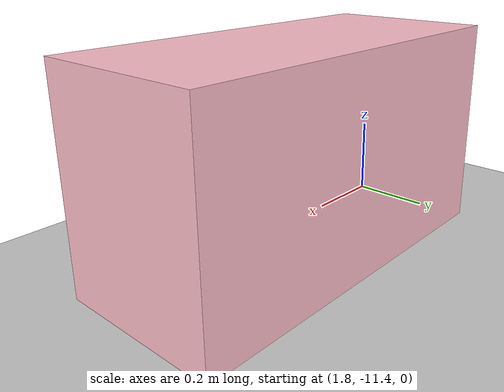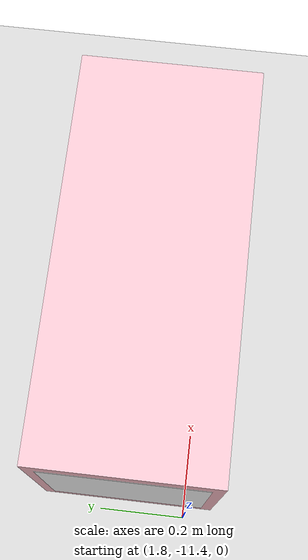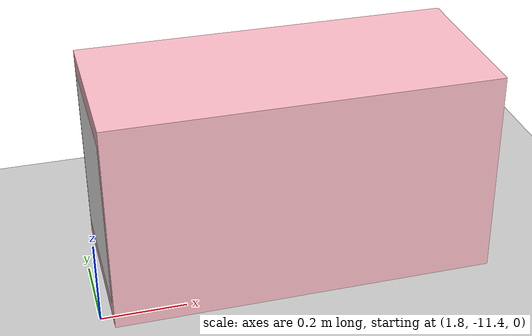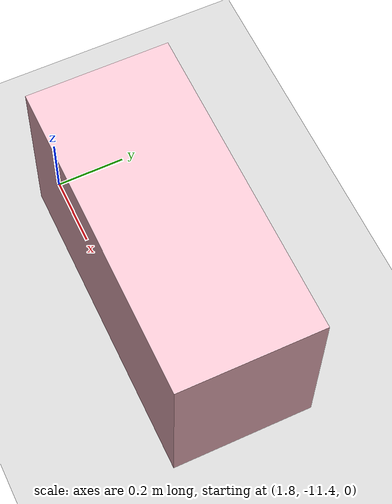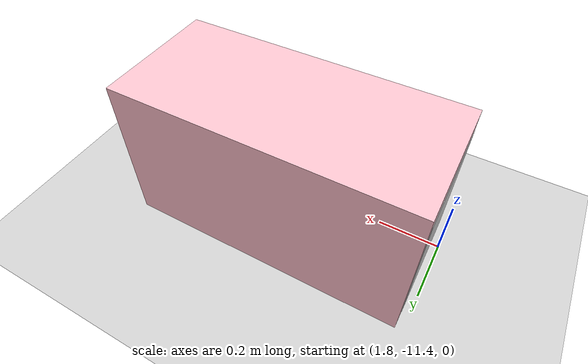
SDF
<sdf version="1.9">
 <world name="pig_pen_16units_world">
  <model name="ground_plane">
   <static>true</static>
   <link name="link">
    <collision name="collision">
     <geometry><plane><normal>0 0 1</normal><size>30 30</size></plane></geometry>
     <surface><friction><ode><mu>1.0</mu><mu2>1.0</mu2></ode></friction></surface>
    </collision>
    <visual name="visual">
     <geometry><plane><normal>0 0 1</normal><size>30 30</size></plane></geometry>
     <material>
      <ambient>0.8 0.8 0.8 1</ambient>
      <diffuse>0.8 0.8 0.8 1</diffuse>
      <specular>0.2 0.2 0.2 1</specular>
     </material>
    </visual>
   </link>
  </model>
  <include><uri>model://farm_pig</uri><name>pig10_b</name><pose>2.275 -11.265 0.27 0 0 3.1416</pose></include>
 </world>
</sdf>
